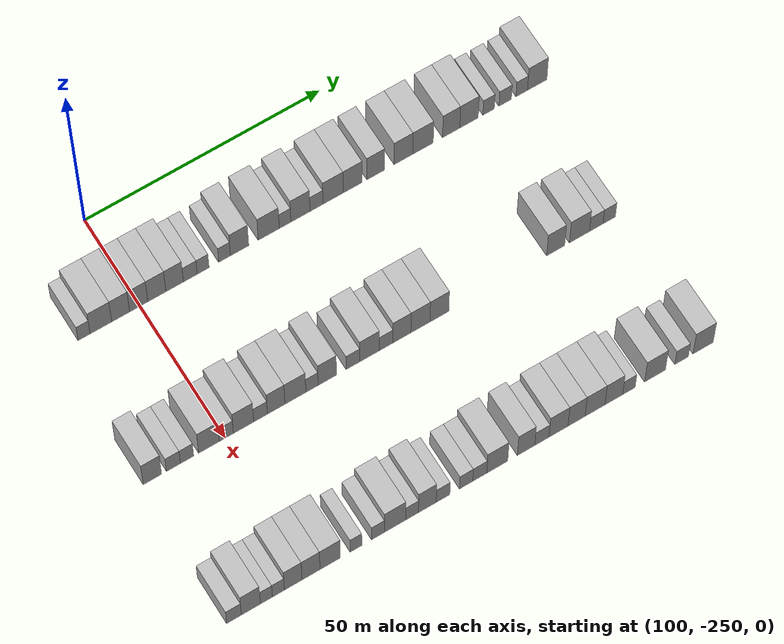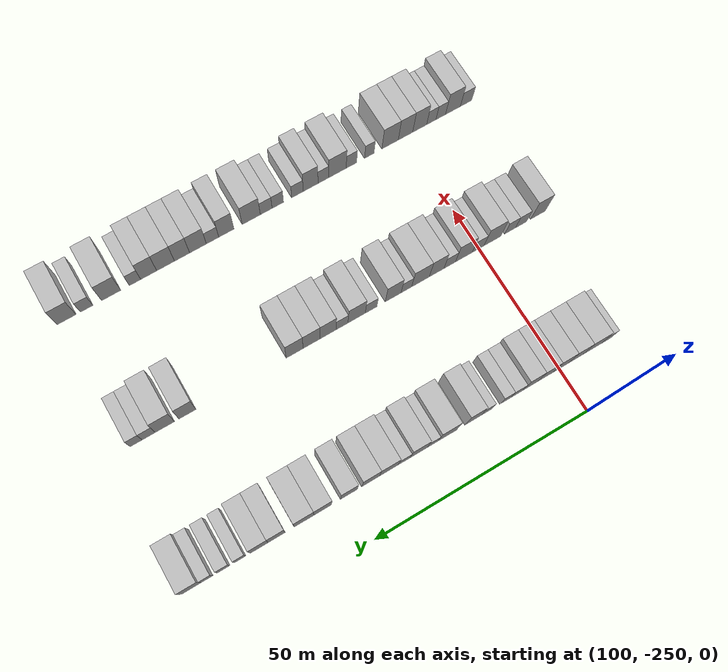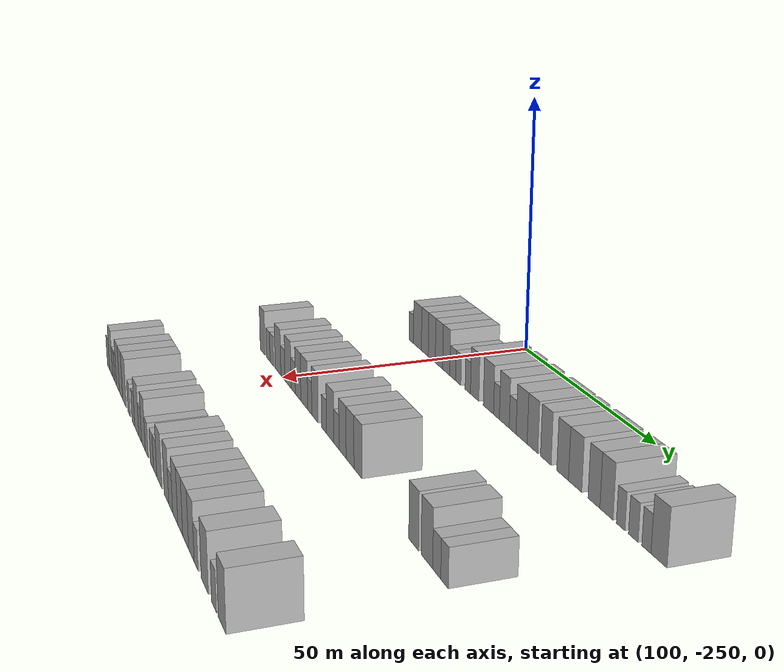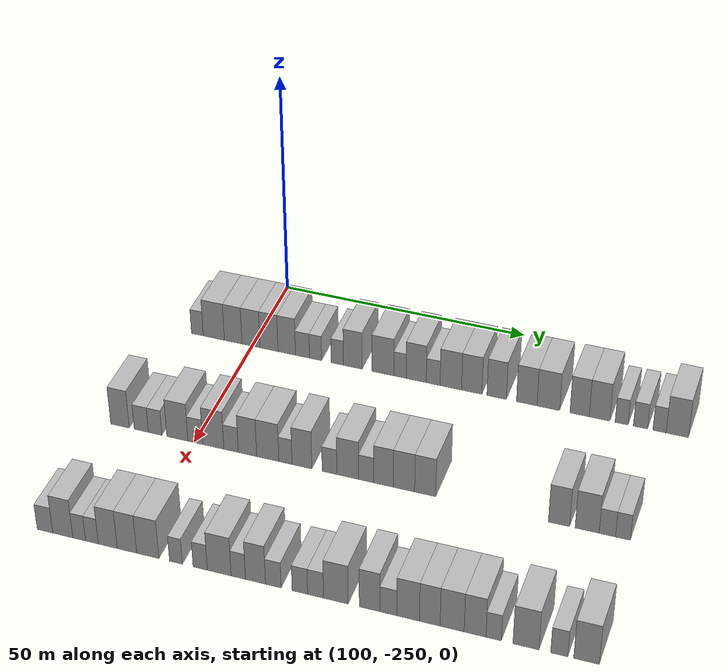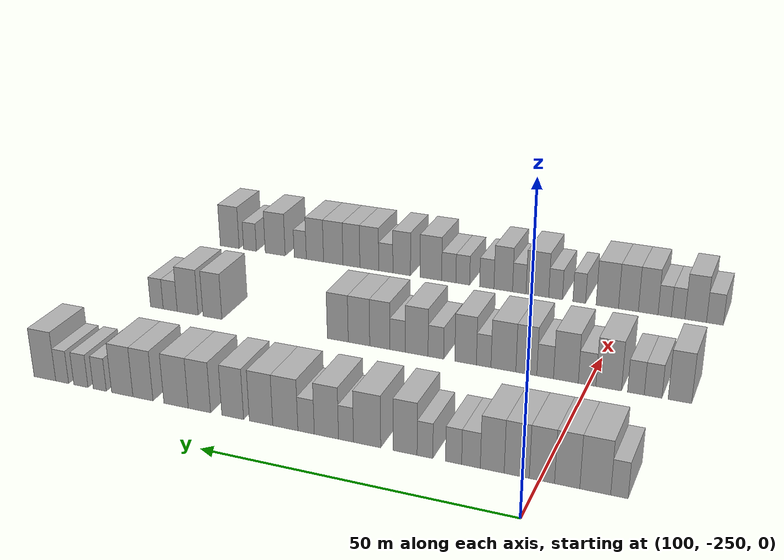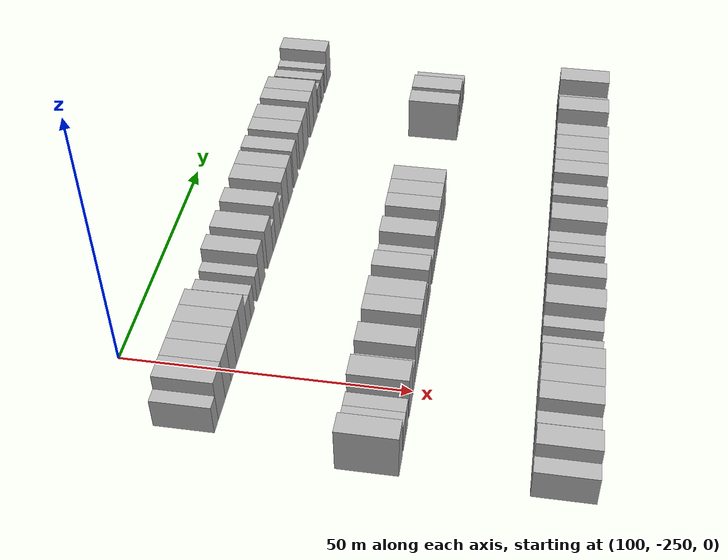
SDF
<sdf version="1.6">
 <world name="default">
  <model name="building_743">
   <static>1</static>
   <pose>115.0000 -261.6607 0 0.000000 0.000000 0.000000</pose>
   <link name="link">
    <pose>0 0 3.00 0 0 0</pose>
    <collision name="collision"><geometry><box><size>10.0000 2.5099 6.0000</size></box></geometry></collision>
    <visual name="visual">
     <cast_shadows>0</cast_shadows>
     <geometry><box><size>10.0000 2.5099 6.0000</size></box></geometry>
     <material>
      <script>
       <uri>model://HANNAS_wall/materials/scripts</uri>
       <uri>model://HANNAS_wall/materials/textures</uri>
       <name>vrc/HANNAS_wall</name>
      </script>
     </material>
    </visual>
   </link>
  </model>
  <model name="building_744">
   <static>1</static>
   <pose>115.0000 -258.1622 0 0.000000 0.000000 0.000000</pose>
   <link name="link">
    <pose>0 0 4.50 0 0 0</pose>
    <collision name="collision"><geometry><box><size>10.0000 4.4872 9.0000</size></box></geometry></collision>
    <visual name="visual">
     <cast_shadows>0</cast_shadows>
     <geometry><box><size>10.0000 4.4872 9.0000</size></box></geometry>
     <material>
      <script>
       <uri>model://HANNAS_wall/materials/scripts</uri>
       <uri>model://HANNAS_wall/materials/textures</uri>
       <name>vrc/HANNAS_wall</name>
      </script>
     </material>
    </visual>
   </link>
  </model>
  <model name="building_745">
   <static>1</static>
   <pose>115.0000 -254.0542 0 0.000000 0.000000 0.000000</pose>
   <link name="link">
    <pose>0 0 4.50 0 0 0</pose>
    <collision name="collision"><geometry><box><size>10.0000 3.7288 9.0000</size></box></geometry></collision>
    <visual name="visual">
     <cast_shadows>0</cast_shadows>
     <geometry><box><size>10.0000 3.7288 9.0000</size></box></geometry>
     <material>
      <script>
       <uri>model://HANNAS_wall/materials/scripts</uri>
       <uri>model://HANNAS_wall/materials/textures</uri>
       <name>vrc/HANNAS_wall</name>
      </script>
     </material>
    </visual>
   </link>
  </model>
  <model name="building_746">
   <static>1</static>
   <pose>115.0000 -250.3031 0 0.000000 0.000000 0.000000</pose>
   <link name="link">
    <pose>0 0 4.50 0 0 0</pose>
    <collision name="collision"><geometry><box><size>10.0000 3.7733 9.0000</size></box></geometry></collision>
    <visual name="visual">
     <cast_shadows>0</cast_shadows>
     <geometry><box><size>10.0000 3.7733 9.0000</size></box></geometry>
     <material>
      <script>
       <uri>model://HANNAS_wall/materials/scripts</uri>
       <uri>model://HANNAS_wall/materials/textures</uri>
       <name>vrc/HANNAS_wall</name>
      </script>
     </material>
    </visual>
   </link>
  </model>
  <model name="building_747">
   <static>1</static>
   <pose>115.0000 -246.5206 0 0.000000 0.000000 0.000000</pose>
   <link name="link">
    <pose>0 0 4.50 0 0 0</pose>
    <collision name="collision"><geometry><box><size>10.0000 3.7917 9.0000</size></box></geometry></collision>
    <visual name="visual">
     <cast_shadows>0</cast_shadows>
     <geometry><box><size>10.0000 3.7917 9.0000</size></box></geometry>
     <material>
      <script>
       <uri>model://HANNAS_wall/materials/scripts</uri>
       <uri>model://HANNAS_wall/materials/textures</uri>
       <name>vrc/HANNAS_wall</name>
      </script>
     </material>
    </visual>
   </link>
  </model>
  <model name="building_748">
   <static>1</static>
   <pose>115.0000 -242.7978 0 0.000000 0.000000 0.000000</pose>
   <link name="link">
    <pose>0 0 4.50 0 0 0</pose>
    <collision name="collision"><geometry><box><size>10.0000 3.6541 9.0000</size></box></geometry></collision>
    <visual name="visual">
     <cast_shadows>0</cast_shadows>
     <geometry><box><size>10.0000 3.6541 9.0000</size></box></geometry>
     <material>
      <script>
       <uri>model://HANNAS_wall/materials/scripts</uri>
       <uri>model://HANNAS_wall/materials/textures</uri>
       <name>vrc/HANNAS_wall</name>
      </script>
     </material>
    </visual>
   </link>
  </model>
  <model name="building_749">
   <static>1</static>
   <pose>115.0000 -239.5249 0 0.000000 0.000000 0.000000</pose>
   <link name="link">
    <pose>0 0 3.00 0 0 0</pose>
    <collision name="collision"><geometry><box><size>10.0000 2.8918 6.0000</size></box></geometry></collision>
    <visual name="visual">
     <cast_shadows>0</cast_shadows>
     <geometry><box><size>10.0000 2.8918 6.0000</size></box></geometry>
     <material>
      <script>
       <uri>model://HANNAS_wall/materials/scripts</uri>
       <uri>model://HANNAS_wall/materials/textures</uri>
       <name>vrc/HANNAS_wall</name>
      </script>
     </material>
    </visual>
   </link>
  </model>
  <model name="building_750">
   <static>1</static>
   <pose>115.0000 -236.8217 0 0.000000 0.000000 0.000000</pose>
   <link name="link">
    <pose>0 0 3.00 0 0 0</pose>
    <collision name="collision"><geometry><box><size>10.0000 2.5146 6.0000</size></box></geometry></collision>
    <visual name="visual">
     <cast_shadows>0</cast_shadows>
     <geometry><box><size>10.0000 2.5146 6.0000</size></box></geometry>
     <material>
      <script>
       <uri>model://HANNAS_wall/materials/scripts</uri>
       <uri>model://HANNAS_wall/materials/textures</uri>
       <name>vrc/HANNAS_wall</name>
      </script>
     </material>
    </visual>
   </link>
  </model>
  <model name="building_751">
   <static>1</static>
   <pose>115.0000 -232.3151 0 0.000000 0.000000 0.000000</pose>
   <link name="link">
    <pose>0 0 3.00 0 0 0</pose>
    <collision name="collision"><geometry><box><size>10.0000 2.4986 6.0000</size></box></geometry></collision>
    <visual name="visual">
     <cast_shadows>0</cast_shadows>
     <geometry><box><size>10.0000 2.4986 6.0000</size></box></geometry>
     <material>
      <script>
       <uri>model://HANNAS_wall/materials/scripts</uri>
       <uri>model://HANNAS_wall/materials/textures</uri>
       <name>vrc/HANNAS_wall</name>
      </script>
     </material>
    </visual>
   </link>
  </model>
  <model name="building_752">
   <static>1</static>
   <pose>115.0000 -229.1396 0 0.000000 0.000000 0.000000</pose>
   <link name="link">
    <pose>0 0 4.50 0 0 0</pose>
    <collision name="collision"><geometry><box><size>10.0000 3.8523 9.0000</size></box></geometry></collision>
    <visual name="visual">
     <cast_shadows>0</cast_shadows>
     <geometry><box><size>10.0000 3.8523 9.0000</size></box></geometry>
     <material>
      <script>
       <uri>model://HANNAS_wall/materials/scripts</uri>
       <uri>model://HANNAS_wall/materials/textures</uri>
       <name>vrc/HANNAS_wall</name>
      </script>
     </material>
    </visual>
   </link>
  </model>
  <model name="building_753">
   <static>1</static>
   <pose>115.0000 -222.9844 0 0.000000 0.000000 0.000000</pose>
   <link name="link">
    <pose>0 0 4.50 0 0 0</pose>
    <collision name="collision"><geometry><box><size>10.0000 4.4581 9.0000</size></box></geometry></collision>
    <visual name="visual">
     <cast_shadows>0</cast_shadows>
     <geometry><box><size>10.0000 4.4581 9.0000</size></box></geometry>
     <material>
      <script>
       <uri>model://HANNAS_wall/materials/scripts</uri>
       <uri>model://HANNAS_wall/materials/textures</uri>
       <name>vrc/HANNAS_wall</name>
      </script>
     </material>
    </visual>
   </link>
  </model>
  <model name="building_754">
   <static>1</static>
   <pose>115.0000 -219.5193 0 0.000000 0.000000 0.000000</pose>
   <link name="link">
    <pose>0 0 3.00 0 0 0</pose>
    <collision name="collision"><geometry><box><size>10.0000 2.4722 6.0000</size></box></geometry></collision>
    <visual name="visual">
     <cast_shadows>0</cast_shadows>
     <geometry><box><size>10.0000 2.4722 6.0000</size></box></geometry>
     <material>
      <script>
       <uri>model://HANNAS_wall/materials/scripts</uri>
       <uri>model://HANNAS_wall/materials/textures</uri>
       <name>vrc/HANNAS_wall</name>
      </script>
     </material>
    </visual>
   </link>
  </model>
  <model name="building_755">
   <static>1</static>
   <pose>115.0000 -216.2566 0 0.000000 0.000000 0.000000</pose>
   <link name="link">
    <pose>0 0 4.50 0 0 0</pose>
    <collision name="collision"><geometry><box><size>10.0000 4.0532 9.0000</size></box></geometry></collision>
    <visual name="visual">
     <cast_shadows>0</cast_shadows>
     <geometry><box><size>10.0000 4.0532 9.0000</size></box></geometry>
     <material>
      <script>
       <uri>model://HANNAS_wall/materials/scripts</uri>
       <uri>model://HANNAS_wall/materials/textures</uri>
       <name>vrc/HANNAS_wall</name>
      </script>
     </material>
    </visual>
   </link>
  </model>
  <model name="building_756">
   <static>1</static>
   <pose>115.0000 -212.8424 0 0.000000 0.000000 0.000000</pose>
   <link name="link">
    <pose>0 0 3.00 0 0 0</pose>
    <collision name="collision"><geometry><box><size>10.0000 2.7752 6.0000</size></box></geometry></collision>
    <visual name="visual">
     <cast_shadows>0</cast_shadows>
     <geometry><box><size>10.0000 2.7752 6.0000</size></box></geometry>
     <material>
      <script>
       <uri>model://HANNAS_wall/materials/scripts</uri>
       <uri>model://HANNAS_wall/materials/textures</uri>
       <name>vrc/HANNAS_wall</name>
      </script>
     </material>
    </visual>
   </link>
  </model>
  <model name="building_757">
   <static>1</static>
   <pose>115.0000 -209.3013 0 0.000000 0.000000 0.000000</pose>
   <link name="link">
    <pose>0 0 4.50 0 0 0</pose>
    <collision name="collision"><geometry><box><size>10.0000 4.3069 9.0000</size></box></geometry></collision>
    <visual name="visual">
     <cast_shadows>0</cast_shadows>
     <geometry><box><size>10.0000 4.3069 9.0000</size></box></geometry>
     <material>
      <script>
       <uri>model://HANNAS_wall/materials/scripts</uri>
       <uri>model://HANNAS_wall/materials/textures</uri>
       <name>vrc/HANNAS_wall</name>
      </script>
     </material>
    </visual>
   </link>
  </model>
  <model name="building_758">
   <static>1</static>
   <pose>115.0000 -205.1210 0 0.000000 0.000000 0.000000</pose>
   <link name="link">
    <pose>0 0 4.50 0 0 0</pose>
    <collision name="collision"><geometry><box><size>10.0000 4.0537 9.0000</size></box></geometry></collision>
    <visual name="visual">
     <cast_shadows>0</cast_shadows>
     <geometry><box><size>10.0000 4.0537 9.0000</size></box></geometry>
     <material>
      <script>
       <uri>model://HANNAS_wall/materials/scripts</uri>
       <uri>model://HANNAS_wall/materials/textures</uri>
       <name>vrc/HANNAS_wall</name>
      </script>
     </material>
    </visual>
   </link>
  </model>
  <model name="building_759">
   <static>1</static>
   <pose>115.0000 -200.1748 0 0.000000 0.000000 0.000000</pose>
   <link name="link">
    <pose>0 0 4.50 0 0 0</pose>
    <collision name="collision"><geometry><box><size>10.0000 3.8388 9.0000</size></box></geometry></collision>
    <visual name="visual">
     <cast_shadows>0</cast_shadows>
     <geometry><box><size>10.0000 3.8388 9.0000</size></box></geometry>
     <material>
      <script>
       <uri>model://HANNAS_wall/materials/scripts</uri>
       <uri>model://HANNAS_wall/materials/textures</uri>
       <name>vrc/HANNAS_wall</name>
      </script>
     </material>
    </visual>
   </link>
  </model>
  <model name="building_760">
   <static>1</static>
   <pose>115.0000 -194.2479 0 0.000000 0.000000 0.000000</pose>
   <link name="link">
    <pose>0 0 4.50 0 0 0</pose>
    <collision name="collision"><geometry><box><size>10.0000 4.0151 9.0000</size></box></geometry></collision>
    <visual name="visual">
     <cast_shadows>0</cast_shadows>
     <geometry><box><size>10.0000 4.0151 9.0000</size></box></geometry>
     <material>
      <script>
       <uri>model://HANNAS_wall/materials/scripts</uri>
       <uri>model://HANNAS_wall/materials/textures</uri>
       <name>vrc/HANNAS_wall</name>
      </script>
     </material>
    </visual>
   </link>
  </model>
  <model name="building_761">
   <static>1</static>
   <pose>115.0000 -190.0276 0 0.000000 0.000000 0.000000</pose>
   <link name="link">
    <pose>0 0 4.50 0 0 0</pose>
    <collision name="collision"><geometry><box><size>10.0000 4.4254 9.0000</size></box></geometry></collision>
    <visual name="visual">
     <cast_shadows>0</cast_shadows>
     <geometry><box><size>10.0000 4.4254 9.0000</size></box></geometry>
     <material>
      <script>
       <uri>model://HANNAS_wall/materials/scripts</uri>
       <uri>model://HANNAS_wall/materials/textures</uri>
       <name>vrc/HANNAS_wall</name>
      </script>
     </material>
    </visual>
   </link>
  </model>
  <model name="building_762">
   <static>1</static>
   <pose>115.0000 -183.9514 0 0.000000 0.000000 0.000000</pose>
   <link name="link">
    <pose>0 0 4.50 0 0 0</pose>
    <collision name="collision"><geometry><box><size>10.0000 3.7270 9.0000</size></box></geometry></collision>
    <visual name="visual">
     <cast_shadows>0</cast_shadows>
     <geometry><box><size>10.0000 3.7270 9.0000</size></box></geometry>
     <material>
      <script>
       <uri>model://HANNAS_wall/materials/scripts</uri>
       <uri>model://HANNAS_wall/materials/textures</uri>
       <name>vrc/HANNAS_wall</name>
      </script>
     </material>
    </visual>
   </link>
  </model>
  <model name="building_763">
   <static>1</static>
   <pose>115.0000 -180.0909 0 0.000000 0.000000 0.000000</pose>
   <link name="link">
    <pose>0 0 4.50 0 0 0</pose>
    <collision name="collision"><geometry><box><size>10.0000 3.9940 9.0000</size></box></geometry></collision>
    <visual name="visual">
     <cast_shadows>0</cast_shadows>
     <geometry><box><size>10.0000 3.9940 9.0000</size></box></geometry>
     <material>
      <script>
       <uri>model://HANNAS_wall/materials/scripts</uri>
       <uri>model://HANNAS_wall/materials/textures</uri>
       <name>vrc/HANNAS_wall</name>
      </script>
     </material>
    </visual>
   </link>
  </model>
  <model name="building_764">
   <static>1</static>
   <pose>115.0000 -175.8471 0 0.000000 0.000000 0.000000</pose>
   <link name="link">
    <pose>0 0 3.00 0 0 0</pose>
    <collision name="collision"><geometry><box><size>10.0000 2.4937 6.0000</size></box></geometry></collision>
    <visual name="visual">
     <cast_shadows>0</cast_shadows>
     <geometry><box><size>10.0000 2.4937 6.0000</size></box></geometry>
     <material>
      <script>
       <uri>model://HANNAS_wall/materials/scripts</uri>
       <uri>model://HANNAS_wall/materials/textures</uri>
       <name>vrc/HANNAS_wall</name>
      </script>
     </material>
    </visual>
   </link>
  </model>
  <model name="building_765">
   <static>1</static>
   <pose>115.0000 -172.2396 0 0.000000 0.000000 0.000000</pose>
   <link name="link">
    <pose>0 0 3.00 0 0 0</pose>
    <collision name="collision"><geometry><box><size>10.0000 2.7213 6.0000</size></box></geometry></collision>
    <visual name="visual">
     <cast_shadows>0</cast_shadows>
     <geometry><box><size>10.0000 2.7213 6.0000</size></box></geometry>
     <material>
      <script>
       <uri>model://HANNAS_wall/materials/scripts</uri>
       <uri>model://HANNAS_wall/materials/textures</uri>
       <name>vrc/HANNAS_wall</name>
      </script>
     </material>
    </visual>
   </link>
  </model>
  <model name="building_766">
   <static>1</static>
   <pose>115.0000 -168.6286 0 0.000000 0.000000 0.000000</pose>
   <link name="link">
    <pose>0 0 3.00 0 0 0</pose>
    <collision name="collision"><geometry><box><size>10.0000 2.5006 6.0000</size></box></geometry></collision>
    <visual name="visual">
     <cast_shadows>0</cast_shadows>
     <geometry><box><size>10.0000 2.5006 6.0000</size></box></geometry>
     <material>
      <script>
       <uri>model://HANNAS_wall/materials/scripts</uri>
       <uri>model://HANNAS_wall/materials/textures</uri>
       <name>vrc/HANNAS_wall</name>
      </script>
     </material>
    </visual>
   </link>
  </model>
  <model name="building_767">
   <static>1</static>
   <pose>115.0000 -165.2616 0 0.000000 0.000000 0.000000</pose>
   <link name="link">
    <pose>0 0 4.50 0 0 0</pose>
    <collision name="collision"><geometry><box><size>10.0000 4.2334 9.0000</size></box></geometry></collision>
    <visual name="visual">
     <cast_shadows>0</cast_shadows>
     <geometry><box><size>10.0000 4.2334 9.0000</size></box></geometry>
     <material>
      <script>
       <uri>model://HANNAS_wall/materials/scripts</uri>
       <uri>model://HANNAS_wall/materials/textures</uri>
       <name>vrc/HANNAS_wall</name>
      </script>
     </material>
    </visual>
   </link>
  </model>
  <model name="building_967">
   <static>1</static>
   <pose>145.0000 -265.0047 0 0.000000 0.000000 0.000000</pose>
   <link name="link">
    <pose>0 0 4.50 0 0 0</pose>
    <collision name="collision"><geometry><box><size>10.0000 3.7724 9.0000</size></box></geometry></collision>
    <visual name="visual">
     <cast_shadows>0</cast_shadows>
     <geometry><box><size>10.0000 3.7724 9.0000</size></box></geometry>
     <material>
      <script>
       <uri>model://HANNAS_wall/materials/scripts</uri>
       <uri>model://HANNAS_wall/materials/textures</uri>
       <name>vrc/HANNAS_wall</name>
      </script>
     </material>
    </visual>
   </link>
  </model>
  <model name="building_968">
   <static>1</static>
   <pose>145.0000 -260.6848 0 0.000000 0.000000 0.000000</pose>
   <link name="link">
    <pose>0 0 3.00 0 0 0</pose>
    <collision name="collision"><geometry><box><size>10.0000 2.8674 6.0000</size></box></geometry></collision>
    <visual name="visual">
     <cast_shadows>0</cast_shadows>
     <geometry><box><size>10.0000 2.8674 6.0000</size></box></geometry>
     <material>
      <script>
       <uri>model://HANNAS_wall/materials/scripts</uri>
       <uri>model://HANNAS_wall/materials/textures</uri>
       <name>vrc/HANNAS_wall</name>
      </script>
     </material>
    </visual>
   </link>
  </model>
  <model name="building_969">
   <static>1</static>
   <pose>145.0000 -257.8826 0 0.000000 0.000000 0.000000</pose>
   <link name="link">
    <pose>0 0 3.00 0 0 0</pose>
    <collision name="collision"><geometry><box><size>10.0000 2.7371 6.0000</size></box></geometry></collision>
    <visual name="visual">
     <cast_shadows>0</cast_shadows>
     <geometry><box><size>10.0000 2.7371 6.0000</size></box></geometry>
     <material>
      <script>
       <uri>model://HANNAS_wall/materials/scripts</uri>
       <uri>model://HANNAS_wall/materials/textures</uri>
       <name>vrc/HANNAS_wall</name>
      </script>
     </material>
    </visual>
   </link>
  </model>
  <model name="building_970">
   <static>1</static>
   <pose>145.0000 -253.3914 0 0.000000 0.000000 0.000000</pose>
   <link name="link">
    <pose>0 0 4.50 0 0 0</pose>
    <collision name="collision"><geometry><box><size>10.0000 4.2452 9.0000</size></box></geometry></collision>
    <visual name="visual">
     <cast_shadows>0</cast_shadows>
     <geometry><box><size>10.0000 4.2452 9.0000</size></box></geometry>
     <material>
      <script>
       <uri>model://HANNAS_wall/materials/scripts</uri>
       <uri>model://HANNAS_wall/materials/textures</uri>
       <name>vrc/HANNAS_wall</name>
      </script>
     </material>
    </visual>
   </link>
  </model>
  <model name="building_971">
   <static>1</static>
   <pose>145.0000 -249.7917 0 0.000000 0.000000 0.000000</pose>
   <link name="link">
    <pose>0 0 3.00 0 0 0</pose>
    <collision name="collision"><geometry><box><size>10.0000 2.9542 6.0000</size></box></geometry></collision>
    <visual name="visual">
     <cast_shadows>0</cast_shadows>
     <geometry><box><size>10.0000 2.9542 6.0000</size></box></geometry>
     <material>
      <script>
       <uri>model://HANNAS_wall/materials/scripts</uri>
       <uri>model://HANNAS_wall/materials/textures</uri>
       <name>vrc/HANNAS_wall</name>
      </script>
     </material>
    </visual>
   </link>
  </model>
  <model name="building_972">
   <static>1</static>
   <pose>145.0000 -246.2104 0 0.000000 0.000000 0.000000</pose>
   <link name="link">
    <pose>0 0 4.50 0 0 0</pose>
    <collision name="collision"><geometry><box><size>10.0000 4.2085 9.0000</size></box></geometry></collision>
    <visual name="visual">
     <cast_shadows>0</cast_shadows>
     <geometry><box><size>10.0000 4.2085 9.0000</size></box></geometry>
     <material>
      <script>
       <uri>model://HANNAS_wall/materials/scripts</uri>
       <uri>model://HANNAS_wall/materials/textures</uri>
       <name>vrc/HANNAS_wall</name>
      </script>
     </material>
    </visual>
   </link>
  </model>
  <model name="building_973">
   <static>1</static>
   <pose>145.0000 -242.6791 0 0.000000 0.000000 0.000000</pose>
   <link name="link">
    <pose>0 0 3.00 0 0 0</pose>
    <collision name="collision"><geometry><box><size>10.0000 2.8539 6.0000</size></box></geometry></collision>
    <visual name="visual">
     <cast_shadows>0</cast_shadows>
     <geometry><box><size>10.0000 2.8539 6.0000</size></box></geometry>
     <material>
      <script>
       <uri>model://HANNAS_wall/materials/scripts</uri>
       <uri>model://HANNAS_wall/materials/textures</uri>
       <name>vrc/HANNAS_wall</name>
      </script>
     </material>
    </visual>
   </link>
  </model>
  <model name="building_974">
   <static>1</static>
   <pose>145.0000 -239.4343 0 0.000000 0.000000 0.000000</pose>
   <link name="link">
    <pose>0 0 4.50 0 0 0</pose>
    <collision name="collision"><geometry><box><size>10.0000 3.6357 9.0000</size></box></geometry></collision>
    <visual name="visual">
     <cast_shadows>0</cast_shadows>
     <geometry><box><size>10.0000 3.6357 9.0000</size></box></geometry>
     <material>
      <script>
       <uri>model://HANNAS_wall/materials/scripts</uri>
       <uri>model://HANNAS_wall/materials/textures</uri>
       <name>vrc/HANNAS_wall</name>
      </script>
     </material>
    </visual>
   </link>
  </model>
  <model name="building_975">
   <static>1</static>
   <pose>145.0000 -235.4419 0 0.000000 0.000000 0.000000</pose>
   <link name="link">
    <pose>0 0 4.50 0 0 0</pose>
    <collision name="collision"><geometry><box><size>10.0000 4.3492 9.0000</size></box></geometry></collision>
    <visual name="visual">
     <cast_shadows>0</cast_shadows>
     <geometry><box><size>10.0000 4.3492 9.0000</size></box></geometry>
     <material>
      <script>
       <uri>model://HANNAS_wall/materials/scripts</uri>
       <uri>model://HANNAS_wall/materials/textures</uri>
       <name>vrc/HANNAS_wall</name>
      </script>
     </material>
    </visual>
   </link>
  </model>
  <model name="building_976">
   <static>1</static>
   <pose>145.0000 -231.9743 0 0.000000 0.000000 0.000000</pose>
   <link name="link">
    <pose>0 0 3.00 0 0 0</pose>
    <collision name="collision"><geometry><box><size>10.0000 2.5860 6.0000</size></box></geometry></collision>
    <visual name="visual">
     <cast_shadows>0</cast_shadows>
     <geometry><box><size>10.0000 2.5860 6.0000</size></box></geometry>
     <material>
      <script>
       <uri>model://HANNAS_wall/materials/scripts</uri>
       <uri>model://HANNAS_wall/materials/textures</uri>
       <name>vrc/HANNAS_wall</name>
      </script>
     </material>
    </visual>
   </link>
  </model>
  <model name="building_977">
   <static>1</static>
   <pose>145.0000 -228.7559 0 0.000000 0.000000 0.000000</pose>
   <link name="link">
    <pose>0 0 4.50 0 0 0</pose>
    <collision name="collision"><geometry><box><size>10.0000 3.8507 9.0000</size></box></geometry></collision>
    <visual name="visual">
     <cast_shadows>0</cast_shadows>
     <geometry><box><size>10.0000 3.8507 9.0000</size></box></geometry>
     <material>
      <script>
       <uri>model://HANNAS_wall/materials/scripts</uri>
       <uri>model://HANNAS_wall/materials/textures</uri>
       <name>vrc/HANNAS_wall</name>
      </script>
     </material>
    </visual>
   </link>
  </model>
  <model name="building_978">
   <static>1</static>
   <pose>145.0000 -223.4117 0 0.000000 0.000000 0.000000</pose>
   <link name="link">
    <pose>0 0 3.00 0 0 0</pose>
    <collision name="collision"><geometry><box><size>10.0000 2.8377 6.0000</size></box></geometry></collision>
    <visual name="visual">
     <cast_shadows>0</cast_shadows>
     <geometry><box><size>10.0000 2.8377 6.0000</size></box></geometry>
     <material>
      <script>
       <uri>model://HANNAS_wall/materials/scripts</uri>
       <uri>model://HANNAS_wall/materials/textures</uri>
       <name>vrc/HANNAS_wall</name>
      </script>
     </material>
    </visual>
   </link>
  </model>
  <model name="building_979">
   <static>1</static>
   <pose>145.0000 -219.9065 0 0.000000 0.000000 0.000000</pose>
   <link name="link">
    <pose>0 0 4.50 0 0 0</pose>
    <collision name="collision"><geometry><box><size>10.0000 4.1728 9.0000</size></box></geometry></collision>
    <visual name="visual">
     <cast_shadows>0</cast_shadows>
     <geometry><box><size>10.0000 4.1728 9.0000</size></box></geometry>
     <material>
      <script>
       <uri>model://HANNAS_wall/materials/scripts</uri>
       <uri>model://HANNAS_wall/materials/textures</uri>
       <name>vrc/HANNAS_wall</name>
      </script>
     </material>
    </visual>
   </link>
  </model>
  <model name="building_980">
   <static>1</static>
   <pose>145.0000 -216.3991 0 0.000000 0.000000 0.000000</pose>
   <link name="link">
    <pose>0 0 3.00 0 0 0</pose>
    <collision name="collision"><geometry><box><size>10.0000 2.8420 6.0000</size></box></geometry></collision>
    <visual name="visual">
     <cast_shadows>0</cast_shadows>
     <geometry><box><size>10.0000 2.8420 6.0000</size></box></geometry>
     <material>
      <script>
       <uri>model://HANNAS_wall/materials/scripts</uri>
       <uri>model://HANNAS_wall/materials/textures</uri>
       <name>vrc/HANNAS_wall</name>
      </script>
     </material>
    </visual>
   </link>
  </model>
  <model name="building_981">
   <static>1</static>
   <pose>145.0000 -213.0930 0 0.000000 0.000000 0.000000</pose>
   <link name="link">
    <pose>0 0 4.50 0 0 0</pose>
    <collision name="collision"><geometry><box><size>10.0000 3.7702 9.0000</size></box></geometry></collision>
    <visual name="visual">
     <cast_shadows>0</cast_shadows>
     <geometry><box><size>10.0000 3.7702 9.0000</size></box></geometry>
     <material>
      <script>
       <uri>model://HANNAS_wall/materials/scripts</uri>
       <uri>model://HANNAS_wall/materials/textures</uri>
       <name>vrc/HANNAS_wall</name>
      </script>
     </material>
    </visual>
   </link>
  </model>
  <model name="building_982">
   <static>1</static>
   <pose>145.0000 -209.1816 0 0.000000 0.000000 0.000000</pose>
   <link name="link">
    <pose>0 0 4.50 0 0 0</pose>
    <collision name="collision"><geometry><box><size>10.0000 4.0527 9.0000</size></box></geometry></collision>
    <visual name="visual">
     <cast_shadows>0</cast_shadows>
     <geometry><box><size>10.0000 4.0527 9.0000</size></box></geometry>
     <material>
      <script>
       <uri>model://HANNAS_wall/materials/scripts</uri>
       <uri>model://HANNAS_wall/materials/textures</uri>
       <name>vrc/HANNAS_wall</name>
      </script>
     </material>
    </visual>
   </link>
  </model>
  <model name="building_983">
   <static>1</static>
   <pose>145.0000 -205.1631 0 0.000000 0.000000 0.000000</pose>
   <link name="link">
    <pose>0 0 4.50 0 0 0</pose>
    <collision name="collision"><geometry><box><size>10.0000 3.9844 9.0000</size></box></geometry></collision>
    <visual name="visual">
     <cast_shadows>0</cast_shadows>
     <geometry><box><size>10.0000 3.9844 9.0000</size></box></geometry>
     <material>
      <script>
       <uri>model://HANNAS_wall/materials/scripts</uri>
       <uri>model://HANNAS_wall/materials/textures</uri>
       <name>vrc/HANNAS_wall</name>
      </script>
     </material>
    </visual>
   </link>
  </model>
  <model name="building_984">
   <static>1</static>
   <pose>145.0000 -180.3544 0 0.000000 0.000000 0.000000</pose>
   <link name="link">
    <pose>0 0 4.50 0 0 0</pose>
    <collision name="collision"><geometry><box><size>10.0000 3.8777 9.0000</size></box></geometry></collision>
    <visual name="visual">
     <cast_shadows>0</cast_shadows>
     <geometry><box><size>10.0000 3.8777 9.0000</size></box></geometry>
     <material>
      <script>
       <uri>model://HANNAS_wall/materials/scripts</uri>
       <uri>model://HANNAS_wall/materials/textures</uri>
       <name>vrc/HANNAS_wall</name>
      </script>
     </material>
    </visual>
   </link>
  </model>
  <model name="building_985">
   <static>1</static>
   <pose>145.0000 -175.2450 0 0.000000 0.000000 0.000000</pose>
   <link name="link">
    <pose>0 0 4.50 0 0 0</pose>
    <collision name="collision"><geometry><box><size>10.0000 4.3410 9.0000</size></box></geometry></collision>
    <visual name="visual">
     <cast_shadows>0</cast_shadows>
     <geometry><box><size>10.0000 4.3410 9.0000</size></box></geometry>
     <material>
      <script>
       <uri>model://HANNAS_wall/materials/scripts</uri>
       <uri>model://HANNAS_wall/materials/textures</uri>
       <name>vrc/HANNAS_wall</name>
      </script>
     </material>
    </visual>
   </link>
  </model>
  <model name="building_986">
   <static>1</static>
   <pose>145.0000 -171.5986 0 0.000000 0.000000 0.000000</pose>
   <link name="link">
    <pose>0 0 3.00 0 0 0</pose>
    <collision name="collision"><geometry><box><size>10.0000 2.9519 6.0000</size></box></geometry></collision>
    <visual name="visual">
     <cast_shadows>0</cast_shadows>
     <geometry><box><size>10.0000 2.9519 6.0000</size></box></geometry>
     <material>
      <script>
       <uri>model://HANNAS_wall/materials/scripts</uri>
       <uri>model://HANNAS_wall/materials/textures</uri>
       <name>vrc/HANNAS_wall</name>
      </script>
     </material>
    </visual>
   </link>
  </model>
  <model name="building_987">
   <static>1</static>
   <pose>145.0000 -168.7921 0 0.000000 0.000000 0.000000</pose>
   <link name="link">
    <pose>0 0 3.00 0 0 0</pose>
    <collision name="collision"><geometry><box><size>10.0000 2.6612 6.0000</size></box></geometry></collision>
    <visual name="visual">
     <cast_shadows>0</cast_shadows>
     <geometry><box><size>10.0000 2.6612 6.0000</size></box></geometry>
     <material>
      <script>
       <uri>model://HANNAS_wall/materials/scripts</uri>
       <uri>model://HANNAS_wall/materials/textures</uri>
       <name>vrc/HANNAS_wall</name>
      </script>
     </material>
    </visual>
   </link>
  </model>
  <model name="building_1189">
   <static>1</static>
   <pose>175.0000 -266.0746 0 0.000000 0.000000 0.000000</pose>
   <link name="link">
    <pose>0 0 3.00 0 0 0</pose>
    <collision name="collision"><geometry><box><size>10.0000 2.9970 6.0000</size></box></geometry></collision>
    <visual name="visual">
     <cast_shadows>0</cast_shadows>
     <geometry><box><size>10.0000 2.9970 6.0000</size></box></geometry>
     <material>
      <script>
       <uri>model://HANNAS_wall/materials/scripts</uri>
       <uri>model://HANNAS_wall/materials/textures</uri>
       <name>vrc/HANNAS_wall</name>
      </script>
     </material>
    </visual>
   </link>
  </model>
  <model name="building_1190">
   <static>1</static>
   <pose>175.0000 -262.6392 0 0.000000 0.000000 0.000000</pose>
   <link name="link">
    <pose>0 0 4.50 0 0 0</pose>
    <collision name="collision"><geometry><box><size>10.0000 3.8738 9.0000</size></box></geometry></collision>
    <visual name="visual">
     <cast_shadows>0</cast_shadows>
     <geometry><box><size>10.0000 3.8738 9.0000</size></box></geometry>
     <material>
      <script>
       <uri>model://HANNAS_wall/materials/scripts</uri>
       <uri>model://HANNAS_wall/materials/textures</uri>
       <name>vrc/HANNAS_wall</name>
      </script>
     </material>
    </visual>
   </link>
  </model>
  <model name="building_1191">
   <static>1</static>
   <pose>175.0000 -259.4724 0 0.000000 0.000000 0.000000</pose>
   <link name="link">
    <pose>0 0 3.00 0 0 0</pose>
    <collision name="collision"><geometry><box><size>10.0000 2.4599 6.0000</size></box></geometry></collision>
    <visual name="visual">
     <cast_shadows>0</cast_shadows>
     <geometry><box><size>10.0000 2.4599 6.0000</size></box></geometry>
     <material>
      <script>
       <uri>model://HANNAS_wall/materials/scripts</uri>
       <uri>model://HANNAS_wall/materials/textures</uri>
       <name>vrc/HANNAS_wall</name>
      </script>
     </material>
    </visual>
   </link>
  </model>
  <model name="building_1192">
   <static>1</static>
   <pose>175.0000 -257.0242 0 0.000000 0.000000 0.000000</pose>
   <link name="link">
    <pose>0 0 3.00 0 0 0</pose>
    <collision name="collision"><geometry><box><size>10.0000 2.4364 6.0000</size></box></geometry></collision>
    <visual name="visual">
     <cast_shadows>0</cast_shadows>
     <geometry><box><size>10.0000 2.4364 6.0000</size></box></geometry>
     <material>
      <script>
       <uri>model://HANNAS_wall/materials/scripts</uri>
       <uri>model://HANNAS_wall/materials/textures</uri>
       <name>vrc/HANNAS_wall</name>
      </script>
     </material>
    </visual>
   </link>
  </model>
  <model name="building_1193">
   <static>1</static>
   <pose>175.0000 -254.0008 0 0.000000 0.000000 0.000000</pose>
   <link name="link">
    <pose>0 0 4.50 0 0 0</pose>
    <collision name="collision"><geometry><box><size>10.0000 3.6103 9.0000</size></box></geometry></collision>
    <visual name="visual">
     <cast_shadows>0</cast_shadows>
     <geometry><box><size>10.0000 3.6103 9.0000</size></box></geometry>
     <material>
      <script>
       <uri>model://HANNAS_wall/materials/scripts</uri>
       <uri>model://HANNAS_wall/materials/textures</uri>
       <name>vrc/HANNAS_wall</name>
      </script>
     </material>
    </visual>
   </link>
  </model>
  <model name="building_1194">
   <static>1</static>
   <pose>175.0000 -250.3502 0 0.000000 0.000000 0.000000</pose>
   <link name="link">
    <pose>0 0 4.50 0 0 0</pose>
    <collision name="collision"><geometry><box><size>10.0000 3.6910 9.0000</size></box></geometry></collision>
    <visual name="visual">
     <cast_shadows>0</cast_shadows>
     <geometry><box><size>10.0000 3.6910 9.0000</size></box></geometry>
     <material>
      <script>
       <uri>model://HANNAS_wall/materials/scripts</uri>
       <uri>model://HANNAS_wall/materials/textures</uri>
       <name>vrc/HANNAS_wall</name>
      </script>
     </material>
    </visual>
   </link>
  </model>
  <model name="building_1195">
   <static>1</static>
   <pose>175.0000 -246.4085 0 0.000000 0.000000 0.000000</pose>
   <link name="link">
    <pose>0 0 4.50 0 0 0</pose>
    <collision name="collision"><geometry><box><size>10.0000 4.1922 9.0000</size></box></geometry></collision>
    <visual name="visual">
     <cast_shadows>0</cast_shadows>
     <geometry><box><size>10.0000 4.1922 9.0000</size></box></geometry>
     <material>
      <script>
       <uri>model://HANNAS_wall/materials/scripts</uri>
       <uri>model://HANNAS_wall/materials/textures</uri>
       <name>vrc/HANNAS_wall</name>
      </script>
     </material>
    </visual>
   </link>
  </model>
  <model name="building_1196">
   <static>1</static>
   <pose>175.0000 -241.1050 0 0.000000 0.000000 0.000000</pose>
   <link name="link">
    <pose>0 0 3.00 0 0 0</pose>
    <collision name="collision"><geometry><box><size>10.0000 2.4148 6.0000</size></box></geometry></collision>
    <visual name="visual">
     <cast_shadows>0</cast_shadows>
     <geometry><box><size>10.0000 2.4148 6.0000</size></box></geometry>
     <material>
      <script>
       <uri>model://HANNAS_wall/materials/scripts</uri>
       <uri>model://HANNAS_wall/materials/textures</uri>
       <name>vrc/HANNAS_wall</name>
      </script>
     </material>
    </visual>
   </link>
  </model>
  <model name="building_1197">
   <static>1</static>
   <pose>175.0000 -236.5740 0 0.000000 0.000000 0.000000</pose>
   <link name="link">
    <pose>0 0 3.00 0 0 0</pose>
    <collision name="collision"><geometry><box><size>10.0000 2.6474 6.0000</size></box></geometry></collision>
    <visual name="visual">
     <cast_shadows>0</cast_shadows>
     <geometry><box><size>10.0000 2.6474 6.0000</size></box></geometry>
     <material>
      <script>
       <uri>model://HANNAS_wall/materials/scripts</uri>
       <uri>model://HANNAS_wall/materials/textures</uri>
       <name>vrc/HANNAS_wall</name>
      </script>
     </material>
    </visual>
   </link>
  </model>
  <model name="building_1198">
   <static>1</static>
   <pose>175.0000 -233.0417 0 0.000000 0.000000 0.000000</pose>
   <link name="link">
    <pose>0 0 4.50 0 0 0</pose>
    <collision name="collision"><geometry><box><size>10.0000 4.4171 9.0000</size></box></geometry></collision>
    <visual name="visual">
     <cast_shadows>0</cast_shadows>
     <geometry><box><size>10.0000 4.4171 9.0000</size></box></geometry>
     <material>
      <script>
       <uri>model://HANNAS_wall/materials/scripts</uri>
       <uri>model://HANNAS_wall/materials/textures</uri>
       <name>vrc/HANNAS_wall</name>
      </script>
     </material>
    </visual>
   </link>
  </model>
  <model name="building_1199">
   <static>1</static>
   <pose>175.0000 -229.5140 0 0.000000 0.000000 0.000000</pose>
   <link name="link">
    <pose>0 0 3.00 0 0 0</pose>
    <collision name="collision"><geometry><box><size>10.0000 2.6385 6.0000</size></box></geometry></collision>
    <visual name="visual">
     <cast_shadows>0</cast_shadows>
     <geometry><box><size>10.0000 2.6385 6.0000</size></box></geometry>
     <material>
      <script>
       <uri>model://HANNAS_wall/materials/scripts</uri>
       <uri>model://HANNAS_wall/materials/textures</uri>
       <name>vrc/HANNAS_wall</name>
      </script>
     </material>
    </visual>
   </link>
  </model>
  <model name="building_1200">
   <static>1</static>
   <pose>175.0000 -226.3540 0 0.000000 0.000000 0.000000</pose>
   <link name="link">
    <pose>0 0 4.50 0 0 0</pose>
    <collision name="collision"><geometry><box><size>10.0000 3.6815 9.0000</size></box></geometry></collision>
    <visual name="visual">
     <cast_shadows>0</cast_shadows>
     <geometry><box><size>10.0000 3.6815 9.0000</size></box></geometry>
     <material>
      <script>
       <uri>model://HANNAS_wall/materials/scripts</uri>
       <uri>model://HANNAS_wall/materials/textures</uri>
       <name>vrc/HANNAS_wall</name>
      </script>
     </material>
    </visual>
   </link>
  </model>
  <model name="building_1201">
   <static>1</static>
   <pose>175.0000 -223.0839 0 0.000000 0.000000 0.000000</pose>
   <link name="link">
    <pose>0 0 3.00 0 0 0</pose>
    <collision name="collision"><geometry><box><size>10.0000 2.8587 6.0000</size></box></geometry></collision>
    <visual name="visual">
     <cast_shadows>0</cast_shadows>
     <geometry><box><size>10.0000 2.8587 6.0000</size></box></geometry>
     <material>
      <script>
       <uri>model://HANNAS_wall/materials/scripts</uri>
       <uri>model://HANNAS_wall/materials/textures</uri>
       <name>vrc/HANNAS_wall</name>
      </script>
     </material>
    </visual>
   </link>
  </model>
  <model name="building_1202">
   <static>1</static>
   <pose>175.0000 -218.2622 0 0.000000 0.000000 0.000000</pose>
   <link name="link">
    <pose>0 0 3.00 0 0 0</pose>
    <collision name="collision"><geometry><box><size>10.0000 2.7846 6.0000</size></box></geometry></collision>
    <visual name="visual">
     <cast_shadows>0</cast_shadows>
     <geometry><box><size>10.0000 2.7846 6.0000</size></box></geometry>
     <material>
      <script>
       <uri>model://HANNAS_wall/materials/scripts</uri>
       <uri>model://HANNAS_wall/materials/textures</uri>
       <name>vrc/HANNAS_wall</name>
      </script>
     </material>
    </visual>
   </link>
  </model>
  <model name="building_1203">
   <static>1</static>
   <pose>175.0000 -215.4200 0 0.000000 0.000000 0.000000</pose>
   <link name="link">
    <pose>0 0 3.00 0 0 0</pose>
    <collision name="collision"><geometry><box><size>10.0000 2.8999 6.0000</size></box></geometry></collision>
    <visual name="visual">
     <cast_shadows>0</cast_shadows>
     <geometry><box><size>10.0000 2.8999 6.0000</size></box></geometry>
     <material>
      <script>
       <uri>model://HANNAS_wall/materials/scripts</uri>
       <uri>model://HANNAS_wall/materials/textures</uri>
       <name>vrc/HANNAS_wall</name>
      </script>
     </material>
    </visual>
   </link>
  </model>
  <model name="building_1204">
   <static>1</static>
   <pose>175.0000 -211.7603 0 0.000000 0.000000 0.000000</pose>
   <link name="link">
    <pose>0 0 4.50 0 0 0</pose>
    <collision name="collision"><geometry><box><size>10.0000 4.4194 9.0000</size></box></geometry></collision>
    <visual name="visual">
     <cast_shadows>0</cast_shadows>
     <geometry><box><size>10.0000 4.4194 9.0000</size></box></geometry>
     <material>
      <script>
       <uri>model://HANNAS_wall/materials/scripts</uri>
       <uri>model://HANNAS_wall/materials/textures</uri>
       <name>vrc/HANNAS_wall</name>
      </script>
     </material>
    </visual>
   </link>
  </model>
  <model name="building_1205">
   <static>1</static>
   <pose>175.0000 -205.7161 0 0.000000 0.000000 0.000000</pose>
   <link name="link">
    <pose>0 0 4.50 0 0 0</pose>
    <collision name="collision"><geometry><box><size>10.0000 3.6690 9.0000</size></box></geometry></collision>
    <visual name="visual">
     <cast_shadows>0</cast_shadows>
     <geometry><box><size>10.0000 3.6690 9.0000</size></box></geometry>
     <material>
      <script>
       <uri>model://HANNAS_wall/materials/scripts</uri>
       <uri>model://HANNAS_wall/materials/textures</uri>
       <name>vrc/HANNAS_wall</name>
      </script>
     </material>
    </visual>
   </link>
  </model>
  <model name="building_1206">
   <static>1</static>
   <pose>175.0000 -202.3880 0 0.000000 0.000000 0.000000</pose>
   <link name="link">
    <pose>0 0 3.00 0 0 0</pose>
    <collision name="collision"><geometry><box><size>10.0000 2.9873 6.0000</size></box></geometry></collision>
    <visual name="visual">
     <cast_shadows>0</cast_shadows>
     <geometry><box><size>10.0000 2.9873 6.0000</size></box></geometry>
     <material>
      <script>
       <uri>model://HANNAS_wall/materials/scripts</uri>
       <uri>model://HANNAS_wall/materials/textures</uri>
       <name>vrc/HANNAS_wall</name>
      </script>
     </material>
    </visual>
   </link>
  </model>
  <model name="building_1207">
   <static>1</static>
   <pose>175.0000 -198.8947 0 0.000000 0.000000 0.000000</pose>
   <link name="link">
    <pose>0 0 4.50 0 0 0</pose>
    <collision name="collision"><geometry><box><size>10.0000 3.9993 9.0000</size></box></geometry></collision>
    <visual name="visual">
     <cast_shadows>0</cast_shadows>
     <geometry><box><size>10.0000 3.9993 9.0000</size></box></geometry>
     <material>
      <script>
       <uri>model://HANNAS_wall/materials/scripts</uri>
       <uri>model://HANNAS_wall/materials/textures</uri>
       <name>vrc/HANNAS_wall</name>
      </script>
     </material>
    </visual>
   </link>
  </model>
  <model name="building_1208">
   <static>1</static>
   <pose>175.0000 -195.0885 0 0.000000 0.000000 0.000000</pose>
   <link name="link">
    <pose>0 0 4.50 0 0 0</pose>
    <collision name="collision"><geometry><box><size>10.0000 3.6131 9.0000</size></box></geometry></collision>
    <visual name="visual">
     <cast_shadows>0</cast_shadows>
     <geometry><box><size>10.0000 3.6131 9.0000</size></box></geometry>
     <material>
      <script>
       <uri>model://HANNAS_wall/materials/scripts</uri>
       <uri>model://HANNAS_wall/materials/textures</uri>
       <name>vrc/HANNAS_wall</name>
      </script>
     </material>
    </visual>
   </link>
  </model>
  <model name="building_1209">
   <static>1</static>
   <pose>175.0000 -191.1793 0 0.000000 0.000000 0.000000</pose>
   <link name="link">
    <pose>0 0 4.50 0 0 0</pose>
    <collision name="collision"><geometry><box><size>10.0000 4.2054 9.0000</size></box></geometry></collision>
    <visual name="visual">
     <cast_shadows>0</cast_shadows>
     <geometry><box><size>10.0000 4.2054 9.0000</size></box></geometry>
     <material>
      <script>
       <uri>model://HANNAS_wall/materials/scripts</uri>
       <uri>model://HANNAS_wall/materials/textures</uri>
       <name>vrc/HANNAS_wall</name>
      </script>
     </material>
    </visual>
   </link>
  </model>
  <model name="building_1210">
   <static>1</static>
   <pose>175.0000 -187.1893 0 0.000000 0.000000 0.000000</pose>
   <link name="link">
    <pose>0 0 4.50 0 0 0</pose>
    <collision name="collision"><geometry><box><size>10.0000 3.7746 9.0000</size></box></geometry></collision>
    <visual name="visual">
     <cast_shadows>0</cast_shadows>
     <geometry><box><size>10.0000 3.7746 9.0000</size></box></geometry>
     <material>
      <script>
       <uri>model://HANNAS_wall/materials/scripts</uri>
       <uri>model://HANNAS_wall/materials/textures</uri>
       <name>vrc/HANNAS_wall</name>
      </script>
     </material>
    </visual>
   </link>
  </model>
  <model name="building_1211">
   <static>1</static>
   <pose>175.0000 -183.9677 0 0.000000 0.000000 0.000000</pose>
   <link name="link">
    <pose>0 0 3.00 0 0 0</pose>
    <collision name="collision"><geometry><box><size>10.0000 2.6688 6.0000</size></box></geometry></collision>
    <visual name="visual">
     <cast_shadows>0</cast_shadows>
     <geometry><box><size>10.0000 2.6688 6.0000</size></box></geometry>
     <material>
      <script>
       <uri>model://HANNAS_wall/materials/scripts</uri>
       <uri>model://HANNAS_wall/materials/textures</uri>
       <name>vrc/HANNAS_wall</name>
      </script>
     </material>
    </visual>
   </link>
  </model>
  <model name="building_1212">
   <static>1</static>
   <pose>175.0000 -178.4039 0 0.000000 0.000000 0.000000</pose>
   <link name="link">
    <pose>0 0 4.50 0 0 0</pose>
    <collision name="collision"><geometry><box><size>10.0000 4.4589 9.0000</size></box></geometry></collision>
    <visual name="visual">
     <cast_shadows>0</cast_shadows>
     <geometry><box><size>10.0000 4.4589 9.0000</size></box></geometry>
     <material>
      <script>
       <uri>model://HANNAS_wall/materials/scripts</uri>
       <uri>model://HANNAS_wall/materials/textures</uri>
       <name>vrc/HANNAS_wall</name>
      </script>
     </material>
    </visual>
   </link>
  </model>
  <model name="building_1213">
   <static>1</static>
   <pose>175.0000 -172.7263 0 0.000000 0.000000 0.000000</pose>
   <link name="link">
    <pose>0 0 3.00 0 0 0</pose>
    <collision name="collision"><geometry><box><size>10.0000 2.8963 6.0000</size></box></geometry></collision>
    <visual name="visual">
     <cast_shadows>0</cast_shadows>
     <geometry><box><size>10.0000 2.8963 6.0000</size></box></geometry>
     <material>
      <script>
       <uri>model://HANNAS_wall/materials/scripts</uri>
       <uri>model://HANNAS_wall/materials/textures</uri>
       <name>vrc/HANNAS_wall</name>
      </script>
     </material>
    </visual>
   </link>
  </model>
  <model name="building_1214">
   <static>1</static>
   <pose>175.0000 -168.1148 0 0.000000 0.000000 0.000000</pose>
   <link name="link">
    <pose>0 0 4.50 0 0 0</pose>
    <collision name="collision"><geometry><box><size>10.0000 4.3266 9.0000</size></box></geometry></collision>
    <visual name="visual">
     <cast_shadows>0</cast_shadows>
     <geometry><box><size>10.0000 4.3266 9.0000</size></box></geometry>
     <material>
      <script>
       <uri>model://HANNAS_wall/materials/scripts</uri>
       <uri>model://HANNAS_wall/materials/textures</uri>
       <name>vrc/HANNAS_wall</name>
      </script>
     </material>
    </visual>
   </link>
  </model>
 </world>
</sdf>
